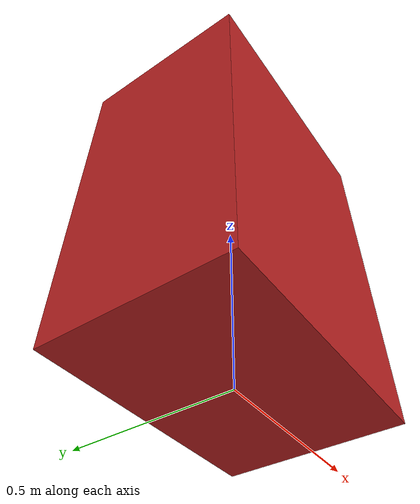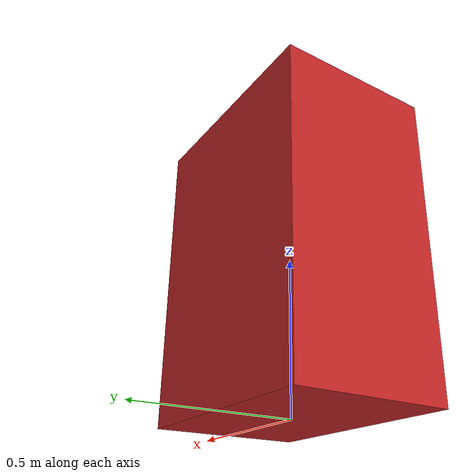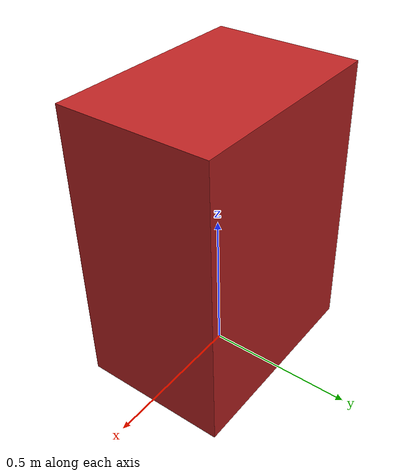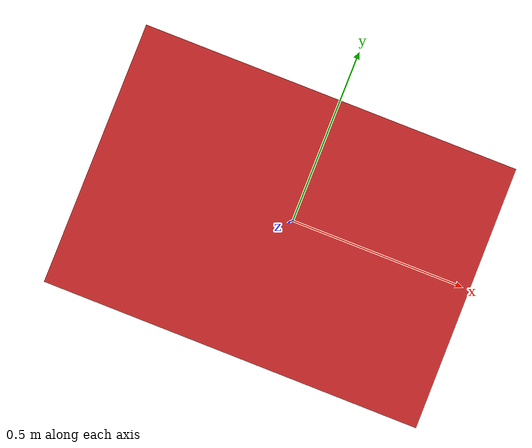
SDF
<?xml version="1.0"?>
<sdf version="1.9">
  <model name="room115_tool_set">
    <static>true</static>
    <link name="room115_tool_set_link">
      <visual name="room115_tool_set_visual">
        <pose>-0.36 -0.25 0 0 0 0</pose>
        <geometry>
          <mesh>
            <uri>model://room115_tool_set/meshes/tool_set.stl</uri>
          </mesh>
        </geometry>
        <material>
          <ambient>0.75 0.14 0.14 1.0</ambient>
          <diffuse>0.75 0.14 0.14 1.0</diffuse>
          <specular>0.16 0.16 0.16 1.0</specular>
          <emissive>0.0 0.0 0.0 0.0</emissive>
        </material>
      </visual>
      <collision name="room115_tool_set_collision">
        <pose>-0.36 -0.25 0 0 0 0</pose>
        <geometry>
          <mesh>
            <uri>model://room115_tool_set/meshes/tool_set.stl</uri>
          </mesh>
        </geometry>
      </collision>
    </link>
  </model>
</sdf>
